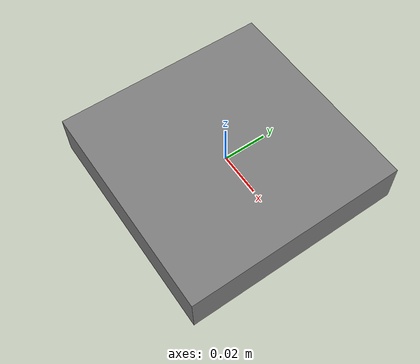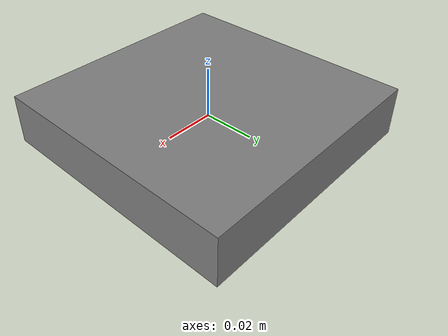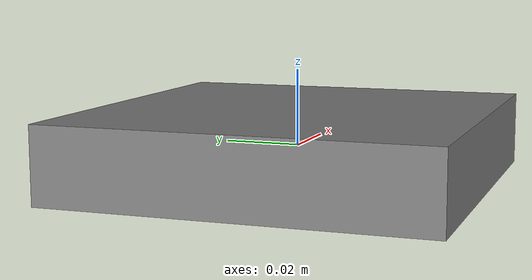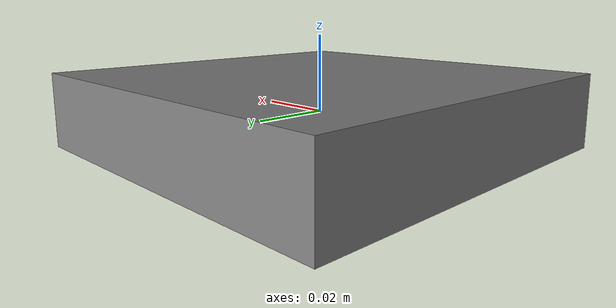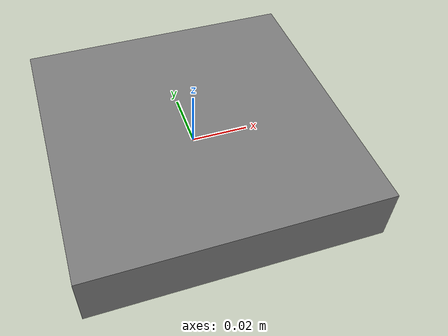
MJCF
<mujoco model="test">
                <worldbody>
                    <body name="gripper">
                        <geom type="box" size="0.05 0.05 0.01"/>
                    </body>
                </worldbody>
                <actuator>
                    <adhesion name="grip1" body="gripper" gain="100" ctrlrange="0 1"/>
                </actuator>
            </mujoco>
